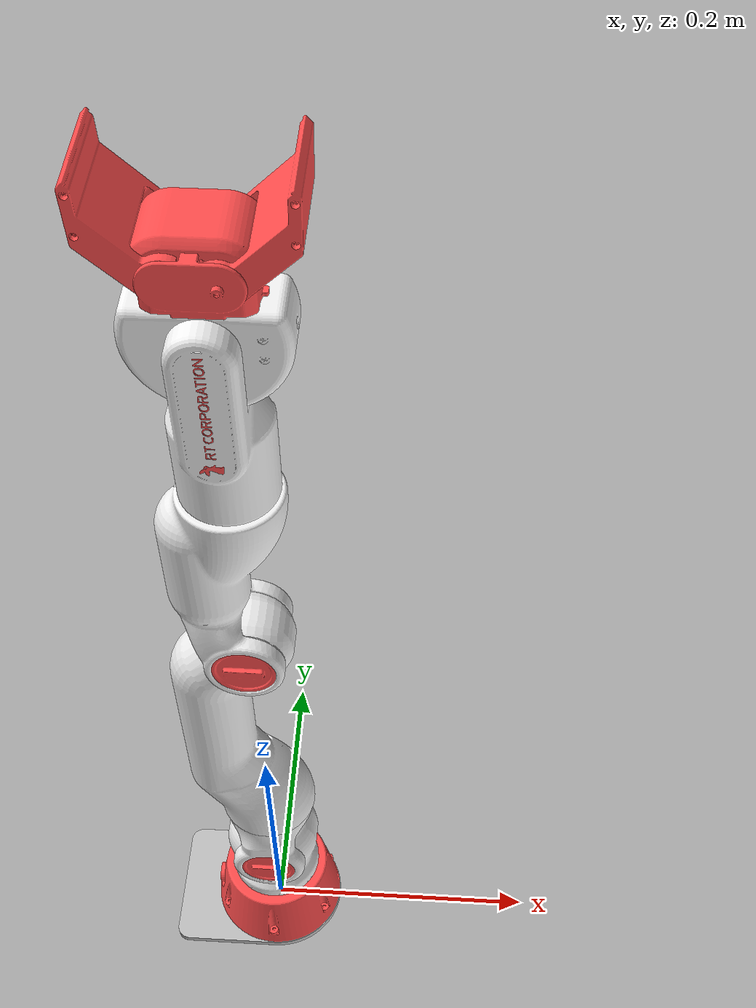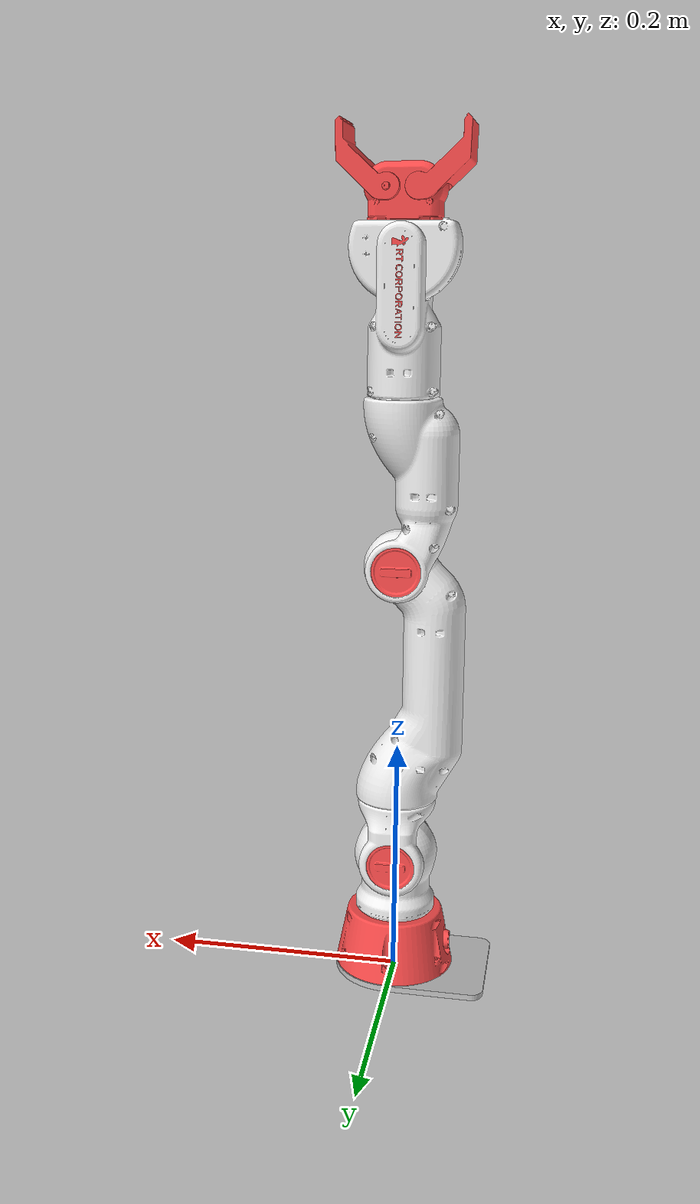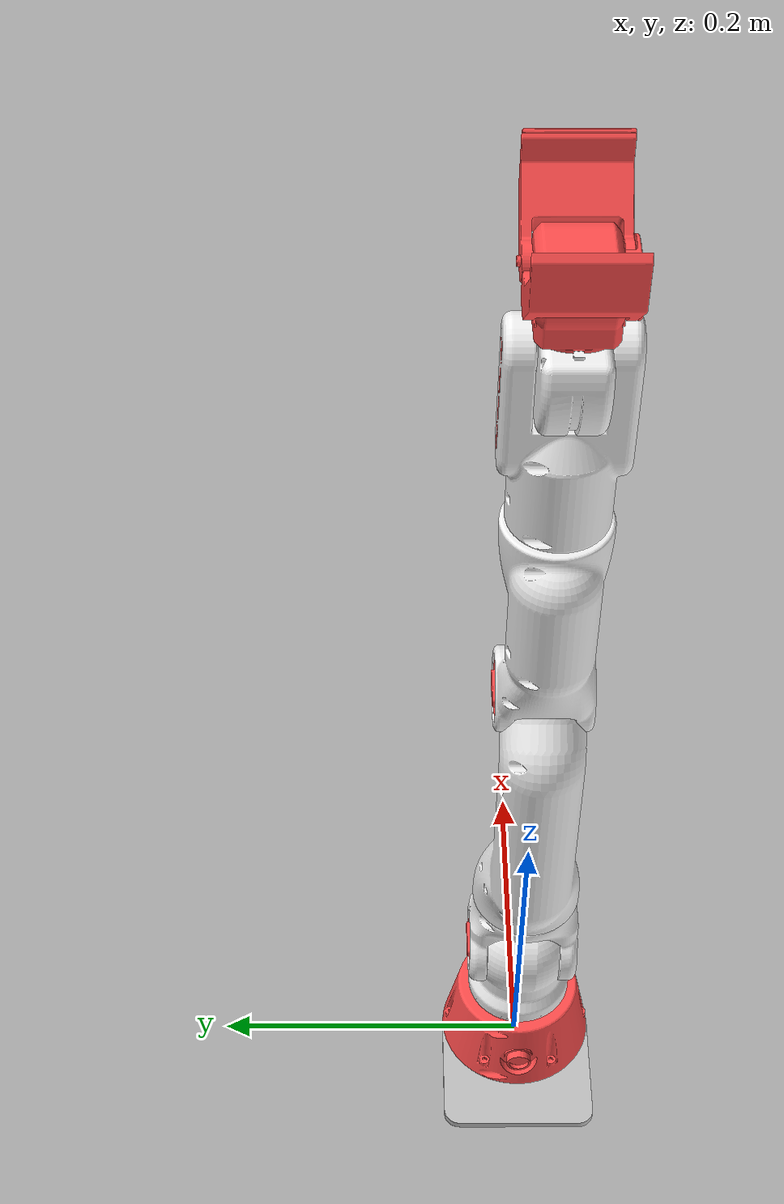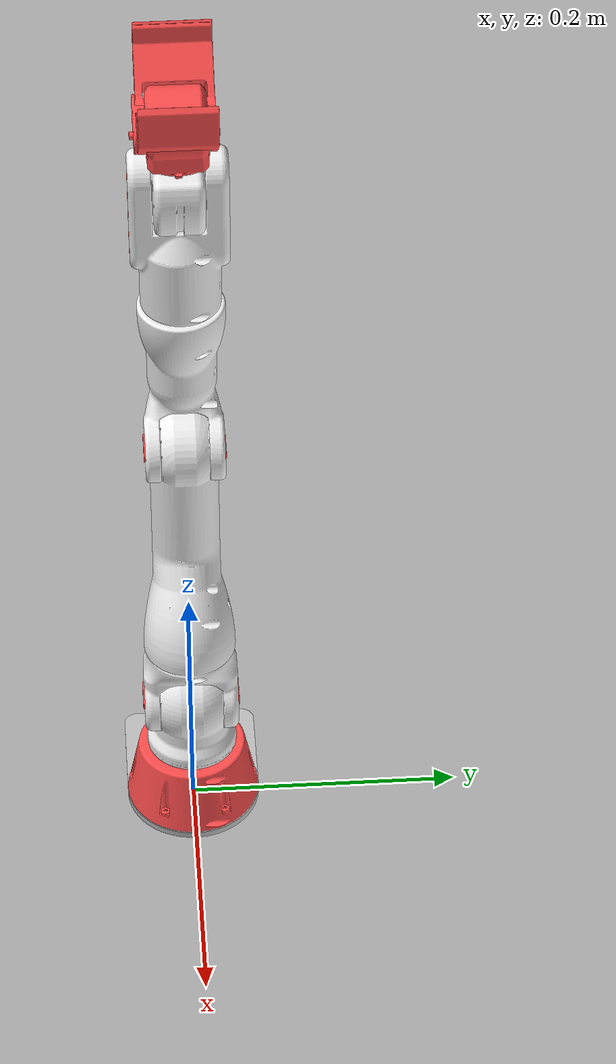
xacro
<?xml version="1.0"?>

<robot
    name="crane_x7"
    xmlns:xacro="http://ros.org/wiki/xacro"
    xmlns:sensor="http://playerstage.sourceforge.net/gazebo/xmlschema/#sensor"
    xmlns:controller="http://playerstage.sourceforge.net/gazebo/xmlschema/#controller"
    xmlns:interface="http://playerstage.sourceforge.net/gazebo/xmlschema/#interface">

  <!-- Include the Crane X7 generator macro -->
  <xacro:include filename="$(find crane_x7_description)/urdf/crane_x7.xacro"/>

  <!-- Link to provide the location reference for the arm -->
  <link name="base_link"/>

  <!-- Used for fixing robot to Gazebo 'base_link' -->
  <link name="world"/>

  <joint name="base_link_to_world_joint" type="fixed">
    <parent link="world"/>
    <child link="base_link"/>
  </joint>

  <xacro:arg name="use_effort_gripper" default="false" />

  <crane_x7 parent="base_link"
              base_color="red"
              shoulder_color="white"
              shoulder_joint_cover_color="red"
              upper_arm_upper_color="white"
              upper_arm_lower_color="white"
              elbow_joint_cover_color="red"
              lower_arm_upper_color="white"
              lower_arm_lower_color="white"
              wrist_color="white"
              hand_color="red"
              joints_vlimit="4.81710873"
              shoulder_llimit="-2.97132"
              shoulder_ulimit="2.97132"
              logos_definition="crane_x7_rt_logos.xacro"
              use_effort_gripper="$(arg use_effort_gripper)">
    <origin xyz="0 0 0"/>
  </crane_x7>
</robot>

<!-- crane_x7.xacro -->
<robot xmlns:xacro="http://ros.org/wiki/xacro">
  <xacro:include filename="$(find crane_x7_description)/urdf/crane_x7_mounting_plate.xacro"/>
  <xacro:include filename="$(find crane_x7_description)/urdf/crane_x7_arm.xacro"/>
  <xacro:include filename="$(find crane_x7_description)/urdf/crane_x7_wide_two_finger_gripper.xacro"/>

  <material name="black">
    <color rgba="0.2 0.2 0.2 1.0"/>
  </material>
  <material name="white">
    <color rgba="0.95 0.95 0.95 1.0"/>
  </material>
  <material name="silver">
    <color rgba="0.75 0.75 0.75 1.0"/>
  </material>
  <material name="red">
    <color rgba="1.0 0.3 0.3 1.0"/>
  </material>
  <material name="green">
    <color rgba="0.3 1.0 0.3 1.0"/>
  </material>
  <material name="blue">
    <color rgba="0.3 0.3 1.0 1.0"/>
  </material>

  <xacro:macro name="crane_x7"
      params="parent
              base_color
              shoulder_color
              shoulder_joint_cover_color
              upper_arm_upper_color
              upper_arm_lower_color
              elbow_joint_cover_color
              lower_arm_upper_color
              lower_arm_lower_color
              wrist_color
              hand_color
              joints_vlimit
              shoulder_llimit
              shoulder_ulimit
              logos_definition
              use_effort_gripper
              *origin">

    <!-- Mounting plate
         (Root of the manipulator's TF tree) -->
    <crane_x7_mounting_plate
        parent="${parent}"
        name="crane_x7_mounting_plate"
        color="silver">
      <xacro:insert_block name="origin"/>
    </crane_x7_mounting_plate>

    <!-- Arm -->
    <crane_x7_arm
        parent="crane_x7_mounting_plate_link"
        end_effector_base_link="crane_x7_gripper_base_link"
        base_color="${base_color}"
        shoulder_color="${shoulder_color}"
        shoulder_joint_cover_color="${shoulder_joint_cover_color}"
        upper_arm_upper_color="${upper_arm_lower_color}"
        upper_arm_lower_color="${upper_arm_lower_color}"
        elbow_joint_cover_color="${elbow_joint_cover_color}"
        lower_arm_upper_color="${lower_arm_upper_color}"
        lower_arm_lower_color="${lower_arm_lower_color}"
        wrist_color="${wrist_color}"
        joints_vlimit="${joints_vlimit}"
        shoulder_llimit="${shoulder_llimit}"
        shoulder_ulimit="${shoulder_ulimit}"
        logos_definition="${logos_definition}">
      <origin xyz="0 0 ${MOUNTING_PLATE_THICKNESS}" rpy="0 0 0"/>
    </crane_x7_arm>

    <!-- End effector -->
    <crane_x7_wide_two_finger_gripper
        name="crane_x7_gripper"
        color="${hand_color}"
        vlimit="${joints_vlimit}"
        use_effort_gripper="${use_effort_gripper}"/>
  </xacro:macro>
</robot>

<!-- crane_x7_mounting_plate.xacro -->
<robot xmlns:xacro="http://ros.org/wiki/xacro">
  <xacro:property name="M_PI" value="3.14159"/>
  <xacro:property name="SCALE_MM" value="0.001"/>
  <xacro:property name="SCALE_CM" value="0.01"/>

  <xacro:property name="MOUNTING_PLATE_THICKNESS" value="0.005"/>

  <xacro:macro name="crane_x7_mounting_plate" params="parent name color *origin">
    <joint name="${name}_joint" type="fixed">
      <xacro:insert_block name="origin"/>
      <parent link="${parent}"/>
      <child link="${name}_link"/>
    </joint>

    <link name="${name}_link">
      <visual>
        <origin xyz="0 0 0" rpy="0 0 0"/>
        <geometry>
          <mesh filename="package://crane_x7_description/meshes/visual/mounting_plate.stl"
              scale="1 1 1"/>
        </geometry>
        <material name="${color}"/>
      </visual>

      <collision>
        <origin xyz="0 0 0" rpy="0 0 0"/>
        <geometry>
          <mesh filename="package://crane_x7_description/meshes/collision/mounting_plate.stl"
              scale="1 1 1"/>
        </geometry>
      </collision>
    </link>

    <!-- For gazebo simulation -->
    <gazebo reference="${name}_link">
      <material>Gazebo/Black</material>
    </gazebo>
  </xacro:macro>
</robot>

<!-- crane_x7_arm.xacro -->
<robot xmlns:xacro="http://ros.org/wiki/xacro">
  <xacro:property name="M_PI" value="3.14159"/>
  <xacro:property name="SCALE_MM" value="0.001"/>
  <xacro:property name="SCALE_CM" value="0.01"/>

  <xacro:property name="NAME_JOINT_BASE" value="crane_x7_shoulder_fixed_part_mount_joint"/>
  <xacro:property name="NAME_JOINT_1" value="crane_x7_shoulder_fixed_part_pan_joint"/>
  <xacro:property name="NAME_JOINT_2" value="crane_x7_shoulder_revolute_part_tilt_joint"/>
  <xacro:property name="NAME_JOINT_3" value="crane_x7_upper_arm_revolute_part_twist_joint"/>
  <xacro:property name="NAME_JOINT_4" value="crane_x7_upper_arm_revolute_part_rotate_joint"/>
  <xacro:property name="NAME_JOINT_5" value="crane_x7_lower_arm_fixed_part_joint"/>
  <xacro:property name="NAME_JOINT_6" value="crane_x7_lower_arm_revolute_part_joint"/>
  <xacro:property name="NAME_JOINT_7" value="crane_x7_wrist_joint"/>

  <xacro:property name="NAME_LINK_BASE" value="crane_x7_shoulder_fixed_part_link"/>
  <xacro:property name="NAME_LINK_1" value="crane_x7_shoulder_revolute_part_link"/>
  <xacro:property name="NAME_LINK_2" value="crane_x7_upper_arm_fixed_part_link"/>
  <xacro:property name="NAME_LINK_3" value="crane_x7_upper_arm_revolute_part_link"/>
  <xacro:property name="NAME_LINK_4" value="crane_x7_lower_arm_fixed_part_link"/>
  <xacro:property name="NAME_LINK_5" value="crane_x7_lower_arm_revolute_part_link"/>
  <xacro:property name="NAME_LINK_6" value="crane_x7_wrist_link"/>

  <xacro:property name="NAME_JOINT_COVER_2_L" value="crane_x7_upper_arm_fixed_part_joint_cover_l_joint"/>
  <xacro:property name="NAME_JOINT_COVER_2_R" value="crane_x7_upper_arm_fixed_part_joint_cover_r_joint"/>
  <xacro:property name="NAME_JOINT_COVER_4_L" value="crane_x7_lower_arm_fixed_part_joint_cover_l_joint"/>
  <xacro:property name="NAME_JOINT_COVER_4_R" value="crane_x7_lower_arm_fixed_part_joint_cover_r_joint"/>

  <xacro:property name="NAME_LINK_COVER_2_L" value="crane_x7_upper_arm_fixed_part_joint_cover_l_link"/>
  <xacro:property name="NAME_LINK_COVER_2_R" value="crane_x7_upper_arm_fixed_part_joint_cover_r_link"/>
  <xacro:property name="NAME_LINK_COVER_4_L" value="crane_x7_lower_arm_fixed_part_joint_cover_l_link"/>
  <xacro:property name="NAME_LINK_COVER_4_R" value="crane_x7_lower_arm_fixed_part_joint_cover_r_link"/>

  <xacro:property name="NAME_LOGO" value="crane_x7_lower_arm_revolute_part"/>

  <!-- Macro for the standard CRANE-X7 configuration -->
  <xacro:macro name="crane_x7_arm"
      params="parent
              end_effector_base_link
              base_color
              shoulder_color
              shoulder_joint_cover_color
              upper_arm_upper_color
              upper_arm_lower_color
              elbow_joint_cover_color
              lower_arm_upper_color
              lower_arm_lower_color
              wrist_color
              joints_vlimit
              shoulder_llimit
              shoulder_ulimit
              logos_definition
              *origin">

    <!-- crane_x7_joint_base -->
    <joint name="${NAME_JOINT_BASE}" type="fixed">
      <xacro:insert_block name="origin"/>
      <parent link="${parent}"/>
      <child link="${NAME_LINK_BASE}"/>
    </joint>

    <!-- crane_x7_link_base -->
    <link name="${NAME_LINK_BASE}">
      <visual>
        <origin xyz="0 0 0" rpy="0 0 0"/>
        <geometry>
          <mesh filename="package://crane_x7_description/meshes/visual/base_fixed_part.stl"
              scale="1 1 1"/>
        </geometry>
        <material name="${base_color}"/>
      </visual>

      <collision>
        <origin xyz="0 0 0" rpy="0 0 0"/>
        <geometry>
          <mesh filename="package://crane_x7_description/meshes/collision/base_fixed_part.stl"
              scale="1 1 1"/>
        </geometry>
      </collision>

      <inertial>
        <mass value="0.388"/>
        <origin xyz="-6.73E-03 -1.00E-06 1.79E-02" rpy="0 0 0"/>
        <inertia ixx="3.25E-04" ixy="1.20E-09" ixz="-4.71E-05"
          iyy="4.83E-04" iyz="1.95E-08"
          izz="5.86E-04"/>
      </inertial>
    </link>

    <!-- crane_x7_joint_1 -->
    <joint name="${NAME_JOINT_1}" type="revolute">
      <origin xyz="0 0 0.036" rpy="0 0 0"/>
      <axis xyz="0 0 1"/>
      <limit effort="10.0" velocity="${joints_vlimit}" lower="${shoulder_llimit}" upper="${shoulder_ulimit}"/>
      <parent link="${NAME_LINK_BASE}"/>
      <child link="${NAME_LINK_1}"/>
      <dynamics damping="1.0e-6" friction="2.0e-1"/>
    </joint>

    <!-- For gazebo simulation -->
    <transmission name="${NAME_JOINT_1}_trans">
      <provideFeedback>true</provideFeedback>
      <implicitSpringDamper>0</implicitSpringDamper>
      <motorTorqueConstant>0.418</motorTorqueConstant>
      <type>transmission_interface/SimpleTransmission</type>
      <joint name="${NAME_JOINT_1}">
        <hardwareInterface>hardware_interface/PositionJointInterface</hardwareInterface>
      </joint>
      <actuator name="${NAME_JOINT_1}_motor">
        <hardwareInterface>hardware_interface/PositionJointInterface</hardwareInterface>
        <mechanicalReduction>1</mechanicalReduction>
      </actuator>
    </transmission>

    <!-- crane_x7_link_1 -->
    <link name="${NAME_LINK_1}">
      <visual>
        <origin xyz="0 0 0" rpy="0 0 ${M_PI}"/>
        <geometry>
          <mesh filename="package://crane_x7_description/meshes/visual/base_revolute_part.stl"
              scale="1 1 1"/>
        </geometry>
        <material name="${shoulder_color}"/>
      </visual>

      <collision>
        <origin xyz="0 0 0.0296" rpy="0 0 0"/>
        <geometry>
          <cylinder radius="0.0334" length="0.0295"/>
        </geometry>
      </collision>
      <collision>
        <origin xyz="0 0 0.064" rpy="${M_PI/2} 0 0"/>
        <geometry>
          <cylinder radius="0.034" length="0.0491"/>
        </geometry>
      </collision>

      <inertial>
        <mass value="0.253"/>
        <origin xyz="2.43e-04 -1.05E-04 4.70E-02" rpy="0 0 0"/>
        <inertia ixx="1.79E-04" ixy="-7.32E-08" ixz="8.89E-07"
          iyy="1.76E-04" iyz="6.23E-07"
          izz="8.96E-05"/>
      </inertial>
    </link>

    <!-- crane_x7_joint_2 -->
    <joint name="${NAME_JOINT_2}" type="revolute">
      <origin xyz="0 0 0.064" rpy="0 0 0"/>
      <axis xyz="0 -1 0"/>
      <limit effort="10.0" velocity="${joints_vlimit}" lower="-${M_PI/2}" upper="${M_PI/2}"/>
      <parent link="${NAME_LINK_1}"/>
      <child link="${NAME_LINK_2}"/>
      <dynamics damping="1.0e-6" friction="2.0e-1"/>
    </joint>

    <!-- For gazebo simulation -->
    <transmission name="${NAME_JOINT_2}_trans">
      <provideFeedback>true</provideFeedback>
      <implicitSpringDamper>0</implicitSpringDamper>
      <motorTorqueConstant>0.418</motorTorqueConstant>
      <type>transmission_interface/SimpleTransmission</type>
      <joint name="${NAME_JOINT_2}">
        <hardwareInterface>hardware_interface/PositionJointInterface</hardwareInterface>
      </joint>
      <actuator name="${NAME_JOINT_2}_motor">
        <hardwareInterface>hardware_interface/PositionJointInterface</hardwareInterface>
        <mechanicalReduction>1</mechanicalReduction>
      </actuator>
    </transmission>

    <!-- crane_x7_link_2 -->
    <link name="${NAME_LINK_2}">
      <visual>
        <origin xyz="0 0 0" rpy="${M_PI/2} 0 0"/>
        <geometry>
          <mesh filename="package://crane_x7_description/meshes/visual/rotating_link_type_1_fixed_part.stl"
              scale="1 1 1"/>
        </geometry>
        <material name="${upper_arm_upper_color}"/>
      </visual>

      <collision>
        <origin xyz="0 0 0" rpy="${M_PI/2} 0 0"/>
        <geometry>
          <mesh filename="package://crane_x7_description/meshes/collision/rotating_link_type_1_fixed_part.stl"
              scale="1 1 1"/>
        </geometry>
      </collision>

      <inertial>
        <mass value="0.136"/>
        <origin xyz="3.10E-05 1.90E-05 3.42E-02" rpy="${M_PI/2} 0 0"/>
        <inertia ixx="1.68E-04" ixy="2.05E-08" ixz="-4.00E-07"
          iyy="9.62E-05" iyz="6.24E-08"
          izz="1.34E-04"/>
      </inertial>
    </link>

    <!-- crane_x7_joint_cover_2_l -->
    <joint name="${NAME_JOINT_COVER_2_L}" type="fixed">
      <parent link="${NAME_LINK_2}"/>
      <child link="${NAME_LINK_COVER_2_L}"/>
      <origin xyz="0 0.0316 0" rpy="0 0 0"/>
    </joint>

    <!-- crane_x7_link_cover_2_l -->
    <link name="${NAME_LINK_COVER_2_L}">
      <visual>
        <origin xyz="0 0 0" rpy="-${M_PI/2} 0 0"/>
        <geometry>
          <mesh filename="package://crane_x7_description/meshes/visual/joint_cover.stl"
              scale="1 1 1"/>
        </geometry>
        <material name="${shoulder_joint_cover_color}"/>
      </visual>
    </link>

    <!-- crane_x7_joint_cover_2_r -->
    <joint name="${NAME_JOINT_COVER_2_R}" type="fixed">
      <parent link="${NAME_LINK_2}"/>
      <child link="${NAME_LINK_COVER_2_R}"/>
      <origin xyz="0 -0.0316 0" rpy="0 0 0"/>
    </joint>

    <!-- crane_x7_link_cover_2_r -->
    <link name="${NAME_LINK_COVER_2_R}">
      <visual>
        <origin xyz="0 0 0" rpy="${M_PI/2} 0 0"/>
        <geometry>
          <mesh filename="package://crane_x7_description/meshes/visual/joint_cover.stl"
              scale="1 1 1"/>
        </geometry>
        <material name="${shoulder_joint_cover_color}"/>
      </visual>
    </link>

    <!-- crane_x7_joint_3 -->
    <joint name="${NAME_JOINT_3}" type="revolute">
      <origin xyz="0 0 0.065" rpy="0 0 0"/>
      <axis xyz="0 0 1"/>
      <limit effort="4.0"
          velocity="${joints_vlimit}"
          lower="-${M_PI/2}"
          upper="${M_PI/2}"/>
      <parent link="${NAME_LINK_2}"/>
      <child link="${NAME_LINK_3}"/>
      <dynamics damping="1.0e-6" friction="2.0e-1"/>
    </joint>

    <!-- For gazebo simulation -->
    <transmission name="${NAME_JOINT_3}_trans">
      <provideFeedback>true</provideFeedback>
      <implicitSpringDamper>0</implicitSpringDamper>
      <motorTorqueConstant>0.418</motorTorqueConstant>
      <type>transmission_interface/SimpleTransmission</type>
      <joint name="${NAME_JOINT_3}">
        <hardwareInterface>hardware_interface/PositionJointInterface</hardwareInterface>
      </joint>
      <actuator name="${NAME_JOINT_3}_motor">
        <hardwareInterface>hardware_interface/PositionJointInterface</hardwareInterface>
        <mechanicalReduction>1</mechanicalReduction>
      </actuator>
    </transmission>

    <!-- crane_x7_link_3 -->
    <link name="${NAME_LINK_3}">
      <visual>
        <origin xyz="0 0 0" rpy="0 0 0"/>
        <geometry>
          <mesh filename="package://crane_x7_description/meshes/visual/rotating_link_type_1_revolute_part.stl"
              scale="1 1 1"/>
        </geometry>
        <material name="${upper_arm_lower_color}"/>
      </visual>

      <collision>
        <origin xyz="0 0 0" rpy="0 0 0"/>
        <geometry>
          <mesh filename="package://crane_x7_description/meshes/collision/rotating_link_type_1_revolute_part.stl"
              scale="1 1 1"/>
        </geometry>
      </collision>

      <inertial>
        <mass value="0.321"/>
        <origin xyz="-1.37E-02 -8.10E-05 9.52E-02" rpy="0 0 0"/>
        <inertia ixx="1.82E-03" ixy="7.54E-07" ixz="-3.73E-05"
          iyy="1.88E-03" iyz="4.15E-06"
          izz="1.59E-04"/>
      </inertial>
    </link>

    <!-- crane_x7_joint_4 -->
    <joint name="${NAME_JOINT_4}" type="revolute">
      <origin xyz="0 0 0.185" rpy="0 0 0"/>
      <axis xyz="0 -1 0"/>
      <limit effort="4.0"
          velocity="${joints_vlimit}"
          lower="-2.80718"
          upper="0.04141"/>
      <parent link="${NAME_LINK_3}"/>
      <child link="${NAME_LINK_4}"/>
      <dynamics damping="1.0e-6" friction="2.0e-1"/>
    </joint>

    <!-- For gazebo simulation -->
    <transmission name="${NAME_JOINT_4}_trans">
      <provideFeedback>true</provideFeedback>
      <implicitSpringDamper>0</implicitSpringDamper>
      <motorTorqueConstant>0.418</motorTorqueConstant>
      <type>transmission_interface/SimpleTransmission</type>
      <joint name="${NAME_JOINT_4}">
        <hardwareInterface>hardware_interface/PositionJointInterface</hardwareInterface>
      </joint>
      <actuator name="${NAME_JOINT_4}_motor">
        <hardwareInterface>hardware_interface/PositionJointInterface</hardwareInterface>
        <mechanicalReduction>1</mechanicalReduction>
      </actuator>
    </transmission>

    <!-- crane_x7_link_4 -->
    <link name="${NAME_LINK_4}">
      <visual>
        <origin xyz="0 0 0" rpy="${M_PI/2} 0 0"/>
        <geometry>
          <mesh filename="package://crane_x7_description/meshes/visual/rotating_link_type_2_fixed_part.stl"
              scale="1 1 1"/>
        </geometry>
        <material name="${lower_arm_upper_color}"/>
      </visual>

      <collision>
        <origin xyz="0 0 0" rpy="${M_PI/2} 0 0"/>
        <geometry>
          <mesh filename="package://crane_x7_description/meshes/collision/rotating_link_type_2_fixed_part.stl"
              scale="1 1 1"/>
        </geometry>
      </collision>

      <inertial>
        <mass value="0.222"/>
        <origin xyz="-9.39E-03 6.40E-05 8.04E-02" rpy="${M_PI/2} 0 0"/>
        <inertia ixx="4.89E-04" ixy="-3.90E-06" ixz="8.29E-08"
          iyy="1.14E-04" iyz="2.82E-06"
          izz="5.03E-04"/>
      </inertial>
    </link>

    <!-- crane_x7_joint_cover_4_l -->
    <joint name="${NAME_JOINT_COVER_4_L}" type="fixed">
      <parent link="${NAME_LINK_4}"/>
      <child link="${NAME_LINK_COVER_4_L}"/>
      <origin xyz="0 0.025 0" rpy="0 0 0"/>
    </joint>

    <!-- crane_x7_link_cover_4_l -->
    <link name="${NAME_LINK_COVER_4_L}">
      <visual>
        <origin xyz="0 0 0" rpy="-${M_PI/2} 0 0"/>
        <geometry>
          <mesh filename="package://crane_x7_description/meshes/visual/joint_cover.stl"
              scale="1 1 1"/>
        </geometry>
        <material name="${elbow_joint_cover_color}"/>
      </visual>
    </link>

    <!-- crane_x7_joint_cover_4_r -->
    <joint name="${NAME_JOINT_COVER_4_R}" type="fixed">
      <parent link="${NAME_LINK_4}"/>
      <child link="${NAME_LINK_COVER_4_R}"/>
      <origin xyz="0 -0.025 0" rpy="0 0 0"/>
    </joint>

    <!-- crane_x7_link_cover_4_r -->
    <link name="${NAME_LINK_COVER_4_R}">
      <visual>
        <origin xyz="0 0 0" rpy="${M_PI/2} 0 0"/>
        <geometry>
          <mesh filename="package://crane_x7_description/meshes/visual/joint_cover.stl"
              scale="1 1 1"/>
        </geometry>
        <material name="${elbow_joint_cover_color}"/>
      </visual>
    </link>

    <!-- crane_x7_joint_5 -->
    <joint name="${NAME_JOINT_5}" type="revolute">
      <origin xyz="0 0 0.121" rpy="0 0 0"/>
      <axis xyz="0 0 1"/>
      <limit effort="4.0" velocity="${joints_vlimit}" lower="-2.77343" upper="1.51403"/>
      <parent link="${NAME_LINK_4}"/>
      <child link="${NAME_LINK_5}"/>
      <dynamics damping="1.0e-6" friction="2.0e-1"/>
    </joint>

    <!-- For gazebo simulation -->
    <transmission name="${NAME_JOINT_5}_trans">
      <provideFeedback>true</provideFeedback>
      <implicitSpringDamper>0</implicitSpringDamper>
      <motorTorqueConstant>0.418</motorTorqueConstant>
      <type>transmission_interface/SimpleTransmission</type>
      <joint name="${NAME_JOINT_5}">
        <hardwareInterface>hardware_interface/PositionJointInterface</hardwareInterface>
      </joint>
      <actuator name="${NAME_JOINT_5}_motor">
        <hardwareInterface>hardware_interface/PositionJointInterface</hardwareInterface>
        <mechanicalReduction>1</mechanicalReduction>
      </actuator>
    </transmission>

    <!-- crane_x7_link_5 -->
    <link name="${NAME_LINK_5}">
      <visual>
        <origin xyz="0 0 0" rpy="0 0 0"/>
        <geometry>
          <mesh filename="package://crane_x7_description/meshes/visual/rotating_link_type_2_revolute_part.stl"
              scale="1 1 1"/>
        </geometry>
        <material name="${lower_arm_lower_color}"/>
      </visual>

      <collision>
        <origin xyz="0 0 0" rpy="0 0 0"/>
        <geometry>
          <mesh filename="package://crane_x7_description/meshes/collision/rotating_link_type_2_revolute_part.stl"
              scale="1 1 1"/>
        </geometry>
      </collision>

      <inertial>
        <mass value="0.207"/>
        <origin xyz="-8.40E-05 4.62E-04 6.37E-02" rpy="0 0 0"/>
        <inertia ixx="2.90E-04" ixy="1.00E-07" ixz="-4.77E-07"
          iyy="2.57E-04" iyz="-1.69E-05"
          izz="8.75E-05"/>
      </inertial>
    </link>

    <!-- logo -->
    <xacro:include filename="${logos_definition}"/>
    <crane_x7_logos
      parent="${NAME_LINK_5}"
      name="${NAME_LOGO}"/>

    <!-- crane_x7_joint_6 -->
    <joint name="${NAME_JOINT_6}" type="revolute">
      <origin xyz="0 0 0.129" rpy="0 0 0"/>
      <axis xyz="0 -1 0"/>
      <limit effort="4.0" velocity="${joints_vlimit}" lower="-${M_PI/2}" upper="${M_PI/2}"/>
      <parent link="${NAME_LINK_5}"/>
      <child link="${NAME_LINK_6}"/>
      <dynamics damping="1.0e-6" friction="2.0e-1"/>
    </joint>

    <!-- For gazebo simulation -->
    <transmission name="${NAME_JOINT_6}_trans">
      <provideFeedback>true</provideFeedback>
      <implicitSpringDamper>0</implicitSpringDamper>
      <motorTorqueConstant>0.418</motorTorqueConstant>
      <type>transmission_interface/SimpleTransmission</type>
      <joint name="${NAME_JOINT_6}">
        <hardwareInterface>hardware_interface/PositionJointInterface</hardwareInterface>
      </joint>
      <actuator name="${NAME_JOINT_6}_motor">
        <hardwareInterface>hardware_interface/PositionJointInterface</hardwareInterface>
        <mechanicalReduction>1</mechanicalReduction>
      </actuator>
    </transmission>

    <!-- crane_x7_link_6 -->
    <link name="${NAME_LINK_6}">
      <visual>
        <origin xyz="0 0 0" rpy="${M_PI/2} 0 0"/>
        <geometry>
          <mesh filename="package://crane_x7_description/meshes/visual/wrist.stl"
              scale="1 1 1"/>
        </geometry>
        <material name="${wrist_color}"/>
      </visual>

      <collision>
        <origin xyz="0 0 0" rpy="${M_PI/2} 0 0"/>
        <geometry>
          <mesh filename="package://crane_x7_description/meshes/collision/wrist.stl"
              scale="1 1 1"/>
        </geometry>
      </collision>

      <inertial>
        <mass value="0.14"/>
        <origin xyz="6.10E-03 8.26E-04 -3.55E-03" rpy="${M_PI/2} 0 0"/>
        <inertia ixx="4.01E-05" ixy="-2.91E-06" ixz="6.39E-07"
          iyy="6.13E-05" iyz="-4.90E-07"
          izz="7.35E-05"/>
      </inertial>
    </link>

    <!-- crane_x7_joint_7 -->
    <joint name="${NAME_JOINT_7}" type="revolute">
      <origin xyz="0 0 0.019" rpy="0 0 0"/>
      <axis xyz="0 0 1"/>
      <limit effort="4.0" velocity="${joints_vlimit}" lower="-2.96365" upper="2.97132"/>
      <parent link="${NAME_LINK_6}"/>
      <child link="${end_effector_base_link}"/>
      <dynamics damping="1.0e-6" friction="2.0e-1"/>
    </joint>

    <!-- For gazebo simulation -->
    <transmission name="${NAME_JOINT_7}_trans">
      <provideFeedback>true</provideFeedback>
      <implicitSpringDamper>0</implicitSpringDamper>
      <motorTorqueConstant>0.418</motorTorqueConstant>
      <type>transmission_interface/SimpleTransmission</type>
      <joint name="${NAME_JOINT_7}">
        <hardwareInterface>hardware_interface/PositionJointInterface</hardwareInterface>
      </joint>
      <actuator name="${NAME_JOINT_7}_motor">
        <hardwareInterface>hardware_interface/PositionJointInterface</hardwareInterface>
        <mechanicalReduction>1</mechanicalReduction>
      </actuator>
    </transmission>

    <gazebo>
      <plugin name='gazebo_ros_control' filename='libgazebo_ros_control.so'>
        <robotNamespace>/crane_x7</robotNamespace>
        <robotSimType>gazebo_ros_control/DefaultRobotHWSim</robotSimType>
        <legacyModeNS>false</legacyModeNS>
      </plugin>
    </gazebo>

    <gazebo reference="${NAME_LINK_BASE}">
      <material>Gazebo/Red</material>
    </gazebo>
    <gazebo reference="${NAME_LINK_1}">
      <material>Gazebo/White</material>
    </gazebo>
    <gazebo reference="${NAME_LINK_2}">
      <material>Gazebo/White</material>
    </gazebo>
    <gazebo reference="${NAME_LINK_3}">
      <material>Gazebo/White</material>
    </gazebo>
    <gazebo reference="${NAME_LINK_4}">
      <material>Gazebo/White</material>
    </gazebo>
    <gazebo reference="${NAME_LINK_5}">
      <material>Gazebo/White</material>
    </gazebo>
    <gazebo reference="${NAME_LINK_6}">
      <material>Gazebo/White</material>
    </gazebo>
    <gazebo reference="${NAME_LINK_COVER_2_L}">
      <material>Gazebo/Red</material>
    </gazebo>
    <gazebo reference="${NAME_LINK_COVER_2_R}">
      <material>Gazebo/Red</material>
    </gazebo>
    <gazebo reference="${NAME_LINK_COVER_4_L}">
      <material>Gazebo/Red</material>
    </gazebo>
    <gazebo reference="${NAME_LINK_COVER_4_R}">
      <material>Gazebo/Red</material>
    </gazebo>

  </xacro:macro>

</robot>

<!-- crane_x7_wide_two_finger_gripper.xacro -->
<robot xmlns:xacro="http://ros.org/wiki/xacro">
  <xacro:property name="M_PI" value="3.14159"/>
  <xacro:property name="SCALE_MM" value="0.001"/>
  <xacro:property name="SCALE_CM" value="0.01"/>

  <xacro:macro name="crane_x7_wide_two_finger_gripper"
    params="name color vlimit use_effort_gripper:=false">
    <link name="${name}_base_link">
      <visual>
        <origin xyz="0 0 0" rpy="0 0 0"/>
        <geometry>
          <mesh filename="package://crane_x7_description/meshes/visual/wide_two_finger_gripper_actuator.stl"
              scale="1 1 1"/>
        </geometry>
        <material name="${color}"/>
      </visual>

      <collision>
        <origin xyz="0 0 0" rpy="0 0 0"/>
        <geometry>
          <mesh filename="package://crane_x7_description/meshes/collision/wide_two_finger_gripper_actuator.stl"
              scale="1 1 1"/>
        </geometry>
      </collision>

      <inertial>
        <mass value="0.121"/>
        <origin xyz="1.08E-04 -1.03E-03 2.08E-02" rpy="0 0 0"/>
        <inertia ixx="3.20E-05" ixy="-9.45E-08" ixz="2.61E-07"
          iyy="4.14E-05" iyz="3.88E-07"
          izz="4.29E-05"/>
      </inertial>
    </link>

    <joint name="${name}_finger_a_joint" type="revolute">
      <origin xyz="-0.012 0.0 0.024" rpy="0 0 0"/>
      <axis xyz="0 -1 0"/>
      <limit effort="4.0" velocity="${vlimit}" lower="0.0046" upper="1.62601"/>
      <parent link="${name}_base_link"/>
      <child link="${name}_finger_a_link"/>
      <dynamics damping="1.0e-6" friction="8.0e-1"/>
    </joint>

    <!-- for gazebo -->
    <transmission name="${name}_finger_a_joint_trans">
      <provideFeedback>true</provideFeedback>
      <implicitSpringDamper>0</implicitSpringDamper>
      <motorTorqueConstant>0.418</motorTorqueConstant>
      <type>transmission_interface/SimpleTransmission</type>
      <joint name="${name}_finger_a_joint">
        <xacro:if value="${use_effort_gripper}">
          <hardwareInterface>hardware_interface/EffortJointInterface</hardwareInterface>
        </xacro:if>
        <xacro:unless value="${use_effort_gripper}">
          <hardwareInterface>hardware_interface/PositionJointInterface</hardwareInterface>
        </xacro:unless>
      </joint>
      <actuator name="${name}_finger_a_joint_motor">
        <xacro:if value="${use_effort_gripper}">
          <hardwareInterface>hardware_interface/EffortJointInterface</hardwareInterface>
        </xacro:if>
        <xacro:unless value="${use_effort_gripper}">
          <hardwareInterface>hardware_interface/PositionJointInterface</hardwareInterface>
        </xacro:unless>
        <mechanicalReduction>1</mechanicalReduction>
      </actuator>
    </transmission>

    <link name="${name}_finger_a_link">
      <visual>
        <origin xyz="0 0 0" rpy="${M_PI/2} 0 0"/>
        <geometry>
          <mesh filename="package://crane_x7_description/meshes/visual/wide_two_finger_gripper_finger_a.stl"
              scale="1 1 1"/>
        </geometry>
        <material name="${color}"/>
      </visual>

      <collision>
        <origin xyz="0 0 0" rpy="${M_PI/2} 0 0"/>
        <geometry>
          <mesh filename="package://crane_x7_description/meshes/collision/wide_two_finger_gripper_finger_a.stl"
              scale="1 1 1"/>
        </geometry>
      </collision>

      <inertial>
        <mass value="0.0158"/>
        <origin xyz="-2.65E-03 3.54E-03 2.69E-02" rpy="${M_PI/2} 0 0"/>
        <inertia ixx="1.01E-05" ixy="-1.97E-07" ixz="-9.89E-08"
        iyy="4.95E-06" iyz="5.37E-07"
        izz="6.24E-06"/>
      </inertial>
    </link>

    <joint name="${name}_finger_b_joint" type="revolute">
      <origin xyz="0.012 0.0 0.024" rpy="0 0 0"/>
      <axis xyz="0 1 0"/>
      <limit effort="4.0" velocity="${vlimit}" lower="0.0046" upper="1.62601"/>
      <parent link="${name}_base_link"/>
      <child link="${name}_finger_b_link"/>
      <mimic joint="${name}_finger_a_joint"/>
      <dynamics damping="1.0e-6" friction="8.0e-1"/>
    </joint>

    <link name="${name}_finger_b_link">
      <visual>
        <origin xyz="0 0 0" rpy="${M_PI/2} 0 0"/>
        <geometry>
          <mesh filename="package://crane_x7_description/meshes/visual/wide_two_finger_gripper_finger_b.stl"
              scale="1 1 1"/>
        </geometry>
        <material name="${color}"/>
      </visual>

      <collision>
        <origin xyz="0 0 0" rpy="${M_PI/2} 0 0"/>
        <geometry>
          <mesh filename="package://crane_x7_description/meshes/collision/wide_two_finger_gripper_finger_b.stl"
              scale="1 1 1"/>
        </geometry>
      </collision>

      <inertial>
        <mass value="0.0139"/>
        <origin xyz="3.01E-03 2.85E-03 3.09E-02" rpy="${M_PI/2} 0 0"/>
        <inertia ixx="7.48E-06" ixy="3.61E-07" ixz="6.34E-08"
        iyy="4.09E-06" iyz="2.28E-07"
        izz="4.37E-06"/>
      </inertial>
    </link>

    <!-- For gazebo simulation -->
    <gazebo>
      <plugin name="crane_x7_gripper_mimic_joint" filename="libroboticsgroup_gazebo_mimic_joint_plugin.so">
        <joint>${name}_finger_a_joint</joint>
        <mimicJoint>${name}_finger_b_joint</mimicJoint>
        <multiplier>1</multiplier>
      </plugin>
    </gazebo>

    <gazebo reference="${name}_base_link">
      <material>Gazebo/Red</material>
    </gazebo>
    <gazebo reference="${name}_finger_a_link">
      <mu1>0.8</mu1>
      <mu2>0.8</mu2>
      <material>Gazebo/Red</material>
    </gazebo>
    <gazebo reference="${name}_finger_b_link">
      <mu1>0.8</mu1>
      <mu2>0.8</mu2>
      <material>Gazebo/Red</material>
    </gazebo>

  </xacro:macro>
</robot>

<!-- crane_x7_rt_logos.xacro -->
<robot xmlns:xacro="http://ros.org/wiki/xacro">
  <xacro:macro name="crane_x7_logos" params="parent name">
    <!-- Left side logo text -->
    <link name="${name}_logo_text_l_link">
      <visual>
        <origin xyz="0 0 0" rpy="-${M_PI/2} ${M_PI/2} 0"/>
        <geometry>
          <mesh filename="package://crane_x7_description/meshes/visual/rtcorp_logo_name.stl"
              scale="1 1 1"/>
        </geometry>
        <material name="logo_red">
          <color rgba="1.0 0.3 0.3 1.0"/>
        </material>
      </visual>
    </link>
    <joint name="${name}_logo_text_l_joint" type="fixed">
      <parent link="${parent}"/>
      <child link="${name}_logo_text_l_link"/>
      <origin xyz="0 0.0345 0.095" rpy="0 0 0"/>
    </joint>

    <!-- Left side logo symbol -->
    <link name="${name}_logo_symbol_l_link">
      <visual>
        <origin xyz="0 0 0" rpy="-${M_PI/2} ${M_PI/2} 0"/>
        <geometry>
          <mesh filename="package://crane_x7_description/meshes/visual/rtcorp_logo_rabbit.stl"
              scale="1 1 1"/>
        </geometry>
        <material name="logo_red"/>
      </visual>
    </link>
    <joint name="${name}_logo_symbol_l_joint" type="fixed">
      <parent link="${parent}"/>
      <child link="${name}_logo_symbol_l_link"/>
      <origin xyz="0 0.0345 0.132" rpy="0 0 0"/>
    </joint>

    <!-- Right side logo text -->
    <link name="${name}_logo_text_r_link">
      <visual>
        <origin xyz="0 0 0" rpy="${M_PI/2} -${M_PI/2} 0"/>
        <geometry>
          <mesh filename="package://crane_x7_description/meshes/visual/rtcorp_logo_name.stl"
              scale="1 1 1"/>
        </geometry>
        <material name="logo_red"/>
      </visual>
    </link>
    <joint name="${name}_logo_text_r_joint" type="fixed">
      <parent link="${parent}"/>
      <child link="${name}_logo_text_r_link"/>
      <origin xyz="0 -0.0345 0.104" rpy="0 0 0"/>
    </joint>

    <!-- Right side logo symbol -->
    <link name="${name}_logo_symbol_r_link">
      <visual>
        <origin xyz="0 0 0" rpy="${M_PI/2} -${M_PI/2} 0"/>
        <geometry>
          <mesh filename="package://crane_x7_description/meshes/visual/rtcorp_logo_rabbit.stl"
              scale="1 1 1"/>
        </geometry>
        <material name="logo_red"/>
      </visual>
    </link>
    <joint name="${name}_logo_symbol_r_joint" type="fixed">
      <parent link="${parent}"/>
      <child link="${name}_logo_symbol_r_link"/>
      <origin xyz="0 -0.0345 0.065" rpy="0 0 0"/>
    </joint>

    <!-- For gazebo simulation -->
    <gazebo reference="${name}_logo_symbol_r_link">
      <material>Gazebo/Red</material>
    </gazebo>
    <gazebo reference="${name}_logo_symbol_l_link">
      <material>Gazebo/Red</material>
    </gazebo>
    <gazebo reference="${name}_logo_text_r_link">
      <material>Gazebo/Black</material>
    </gazebo>
    <gazebo reference="${name}_logo_text_l_link">
      <material>Gazebo/Black</material>
    </gazebo>

  </xacro:macro>
</robot>
